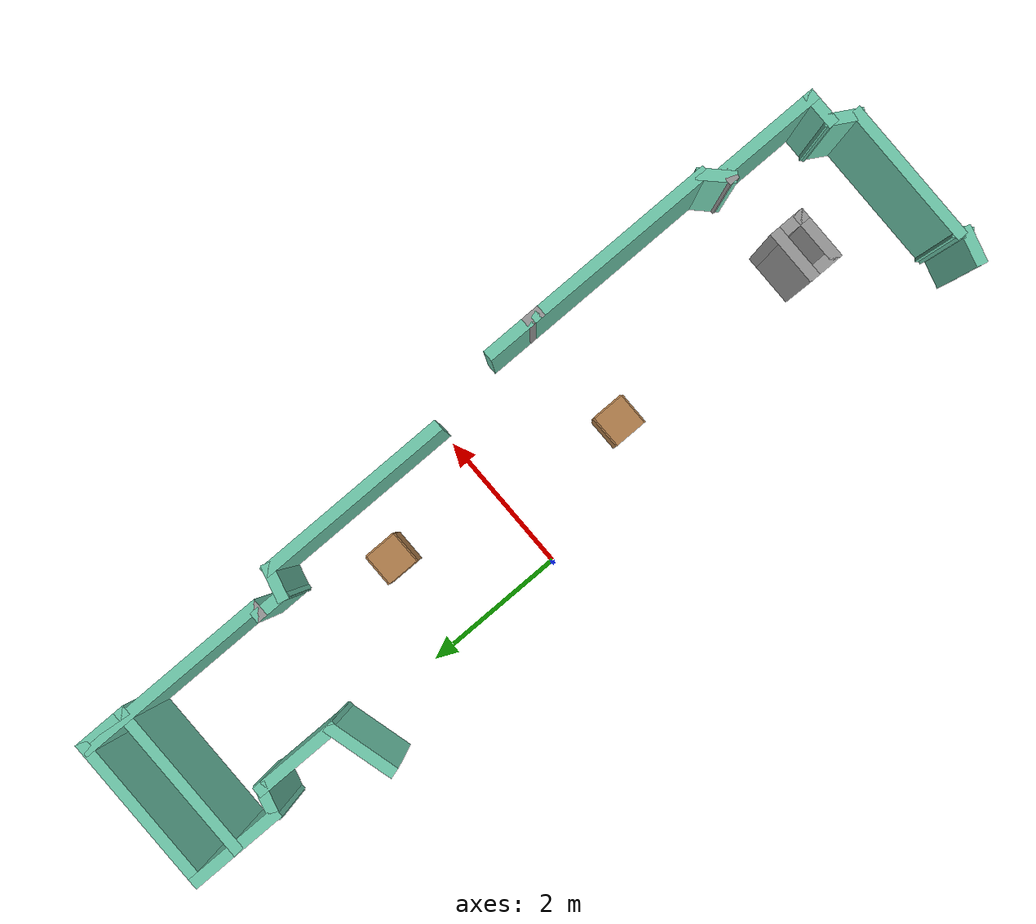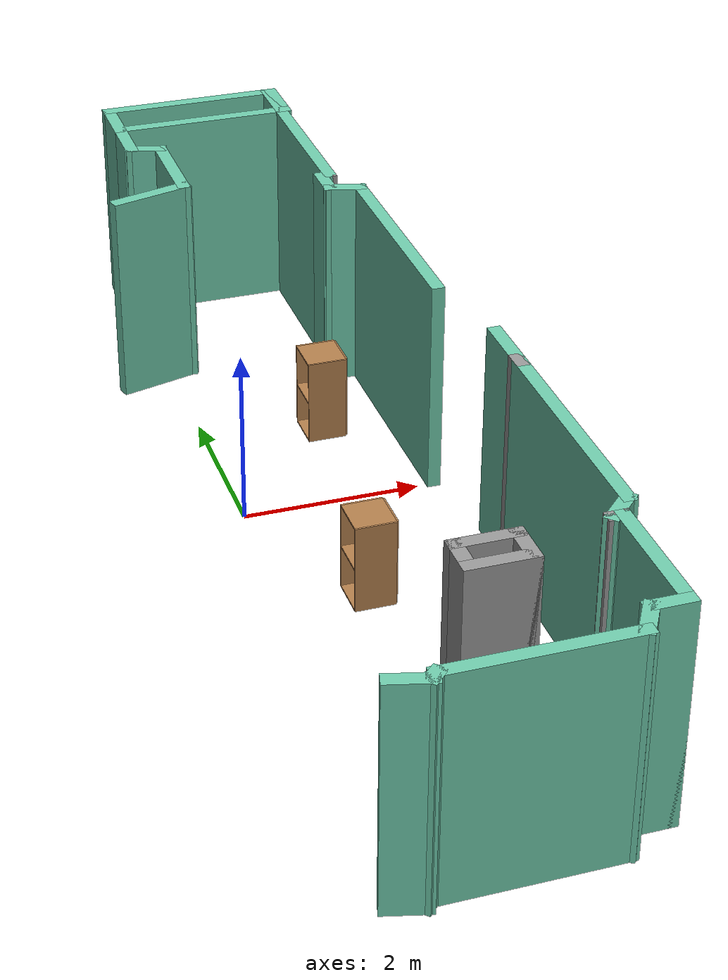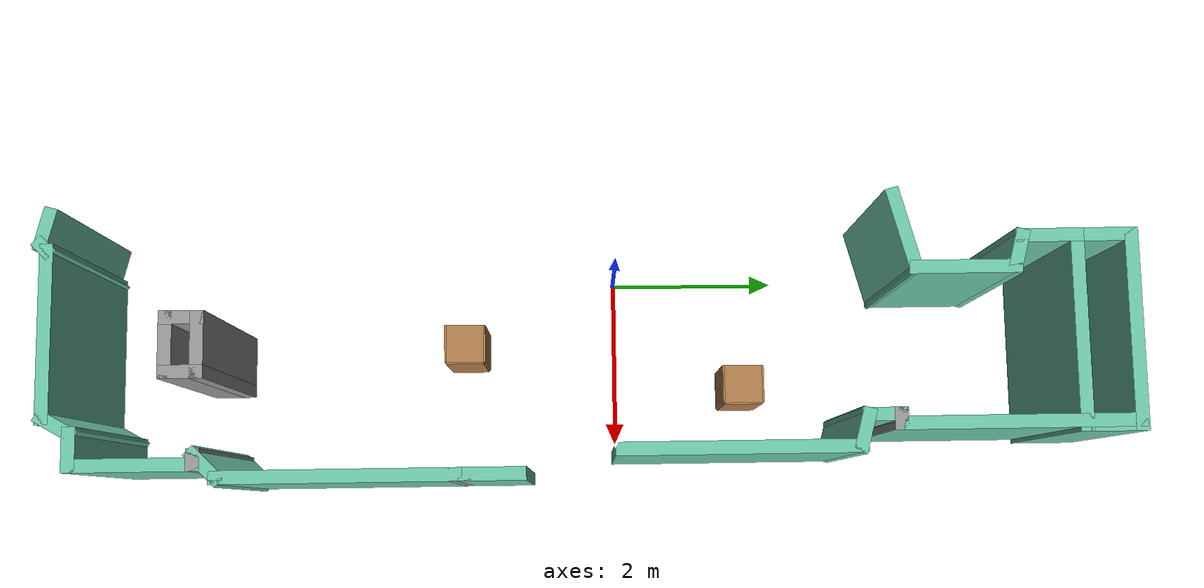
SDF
<sdf version="1.6">
 <world name="default">
  <model name="map_3">
   <pose>0.639107 -0.35531 0 0 -0 0</pose>
   <link name="Wall_0">
    <collision name="Wall_0_Collision">
     <geometry><box><size>2.25 0.15 2.5</size></box></geometry>
     <pose>0 0 1.25 0 -0 0</pose>
    </collision>
    <visual name="Wall_0_Visual">
     <pose>0 0 1.25 0 -0 0</pose>
     <geometry><box><size>2.25 0.15 2.5</size></box></geometry>
     <material>
      <script><uri>file://media/materials/scripts/gazebo.material</uri><name>Gazebo/Grey</name></script>
      <ambient>0.435294 0.796078 0.67451 1</ambient>
     </material>
     <meta><layer>0</layer></meta>
    </visual>
    <pose>0.303175 6.04258 0 0 -0 3.14159</pose>
   </link>
   <link name="Wall_1">
    <collision name="Wall_1_Collision">
     <geometry><box><size>0.75 0.15 2.5</size></box></geometry>
     <pose>0 0 1.25 0 -0 0</pose>
    </collision>
    <visual name="Wall_1_Visual">
     <pose>0 0 1.25 0 -0 0</pose>
     <geometry><box><size>0.75 0.15 2.5</size></box></geometry>
     <material>
      <script><uri>file://media/materials/scripts/gazebo.material</uri><name>Gazebo/Grey</name></script>
      <ambient>0.435294 0.796078 0.67451 1</ambient>
     </material>
     <meta><layer>0</layer></meta>
    </visual>
    <pose>-0.746825 5.74258 0 0 -0 -1.5708</pose>
   </link>
   <link name="Wall_110">
    <collision name="Wall_110_Collision">
     <geometry><box><size>2.75 0.15 2.5</size></box></geometry>
     <pose>0 0 1.25 0 -0 0</pose>
    </collision>
    <visual name="Wall_110_Visual">
     <pose>0 0 1.25 0 -0 0</pose>
     <geometry><box><size>2.75 0.15 2.5</size></box></geometry>
     <material>
      <script><uri>file://media/materials/scripts/gazebo.material</uri><name>Gazebo/Grey</name></script>
      <ambient>0.435294 0.796078 0.67451 1</ambient>
     </material>
     <meta><layer>0</layer></meta>
    </visual>
    <pose>1.54404 1.68376 0 0 -0 1.5708</pose>
   </link>
   <link name="Wall_111">
    <collision name="Wall_111_Collision">
     <geometry><box><size>0.5 0.15 2.5</size></box></geometry>
     <pose>0 0 1.25 0 -0 0</pose>
    </collision>
    <visual name="Wall_111_Visual">
     <pose>0 0 1.25 0 -0 0</pose>
     <geometry><box><size>0.5 0.15 2.5</size></box></geometry>
     <material>
      <script><uri>file://media/materials/scripts/gazebo.material</uri><name>Gazebo/Grey</name></script>
      <ambient>0.435294 0.796078 0.67451 1</ambient>
     </material>
     <meta><layer>0</layer></meta>
    </visual>
    <pose>1.375 3.02905 0 0 -0 2.87979</pose>
   </link>
   <link name="Wall_112">
    <collision name="Wall_112_Collision">
     <geometry><box><size>0.5 0.15 2.5</size></box></geometry>
     <pose>0 0 1.25 0 -0 0</pose>
    </collision>
    <visual name="Wall_112_Visual">
     <pose>0 0 1.25 0 -0 0</pose>
     <geometry><box><size>0.5 0.15 2.5</size></box></geometry>
     <material>
      <script><uri>file://media/materials/scripts/gazebo.material</uri><name>Gazebo/Grey</name></script>
      <ambient>0.435294 0.796078 0.67451 1</ambient>
     </material>
     <meta><layer>0</layer></meta>
    </visual>
    <pose>1.20596 3.24934 0 0 -0 1.5708</pose>
   </link>
   <link name="Wall_113">
    <collision name="Wall_113_Collision">
     <geometry><box><size>0.25 0.15 2.5</size></box></geometry>
     <pose>0 0 1.25 0 -0 0</pose>
    </collision>
    <visual name="Wall_113_Visual">
     <pose>0 0 1.25 0 -0 0</pose>
     <geometry><box><size>0.25 0.15 2.5</size></box></geometry>
     <material>
      <script><uri>file://media/materials/scripts/gazebo.material</uri><name>Gazebo/Grey</name></script>
      <ambient>1 1 1 1</ambient>
     </material>
     <meta><layer>0</layer></meta>
    </visual>
    <pose>1.25596 3.42434 0 0 -0 0</pose>
   </link>
   <link name="Wall_114">
    <collision name="Wall_114_Collision">
     <geometry><box><size>2.75 0.15 2.5</size></box></geometry>
     <pose>0 0 1.25 0 -0 0</pose>
    </collision>
    <visual name="Wall_114_Visual">
     <pose>0 0 1.25 0 -0 0</pose>
     <geometry><box><size>2.75 0.15 2.5</size></box></geometry>
     <material>
      <script><uri>file://media/materials/scripts/gazebo.material</uri><name>Gazebo/Grey</name></script>
      <ambient>0.435294 0.796078 0.67451 1</ambient>
     </material>
     <meta><layer>0</layer></meta>
    </visual>
    <pose>1.30596 4.72434 0 0 -0 1.5708</pose>
   </link>
   <link name="Wall_125">
    <collision name="Wall_125_Collision">
     <geometry><box><size>0.5 0.15 2.5</size></box></geometry>
     <pose>0 0 1.25 0 -0 0</pose>
    </collision>
    <visual name="Wall_125_Visual">
     <pose>0 0 1.25 0 -0 0</pose>
     <geometry><box><size>0.5 0.15 2.5</size></box></geometry>
     <material>
      <script><uri>file://media/materials/scripts/gazebo.material</uri><name>Gazebo/Grey</name></script>
      <ambient>1 1 1 1</ambient>
     </material>
     <meta><layer>0</layer></meta>
    </visual>
    <pose>0.031075 -4.44181 0 0 -0 -1.5708</pose>
   </link>
   <link name="Wall_126">
    <collision name="Wall_126_Collision">
     <geometry><box><size>0.75 0.15 2.5</size></box></geometry>
     <pose>0 0 1.25 0 -0 0</pose>
    </collision>
    <visual name="Wall_126_Visual">
     <pose>0 0 1.25 0 -0 0</pose>
     <geometry><box><size>0.75 0.15 2.5</size></box></geometry>
     <material>
      <script><uri>file://media/materials/scripts/gazebo.material</uri><name>Gazebo/Grey</name></script>
      <ambient>1 1 1 1</ambient>
     </material>
     <meta><layer>0</layer></meta>
    </visual>
    <pose>0.331075 -4.61681 0 0 -0 0</pose>
   </link>
   <link name="Wall_127">
    <collision name="Wall_127_Collision">
     <geometry><box><size>0.5 0.15 2.5</size></box></geometry>
     <pose>0 0 1.25 0 -0 0</pose>
    </collision>
    <visual name="Wall_127_Visual">
     <pose>0 0 1.25 0 -0 0</pose>
     <geometry><box><size>0.5 0.15 2.5</size></box></geometry>
     <material>
      <script><uri>file://media/materials/scripts/gazebo.material</uri><name>Gazebo/Grey</name></script>
      <ambient>1 1 1 1</ambient>
     </material>
     <meta><layer>0</layer></meta>
    </visual>
    <pose>0.631075 -4.44181 0 0 -0 1.5708</pose>
   </link>
   <link name="Wall_128">
    <collision name="Wall_128_Collision">
     <geometry><box><size>0.75 0.15 2.5</size></box></geometry>
     <pose>0 0 1.25 0 -0 0</pose>
    </collision>
    <visual name="Wall_128_Visual">
     <pose>0 0 1.25 0 -0 0</pose>
     <geometry><box><size>0.75 0.15 2.5</size></box></geometry>
     <material>
      <script><uri>file://media/materials/scripts/gazebo.material</uri><name>Gazebo/Grey</name></script>
      <ambient>1 1 1 1</ambient>
     </material>
     <meta><layer>0</layer></meta>
    </visual>
    <pose>0.331075 -4.26681 0 0 -0 3.14159</pose>
   </link>
   <link name="Wall_2">
    <collision name="Wall_2_Collision">
     <geometry><box><size>2.25 0.15 2.5</size></box></geometry>
     <pose>0 0 1.25 0 -0 0</pose>
    </collision>
    <visual name="Wall_2_Visual">
     <pose>0 0 1.25 0 -0 0</pose>
     <geometry><box><size>2.25 0.15 2.5</size></box></geometry>
     <material>
      <script><uri>file://media/materials/scripts/gazebo.material</uri><name>Gazebo/Grey</name></script>
      <ambient>0.435294 0.796078 0.67451 1</ambient>
     </material>
     <meta><layer>0</layer></meta>
    </visual>
    <pose>0.303175 5.44259 0 0 -0 0</pose>
   </link>
   <link name="Wall_3">
    <collision name="Wall_3_Collision">
     <geometry><box><size>0.75 0.15 2.5</size></box></geometry>
     <pose>0 0 1.25 0 -0 0</pose>
    </collision>
    <visual name="Wall_3_Visual">
     <pose>0 0 1.25 0 -0 0</pose>
     <geometry><box><size>0.75 0.15 2.5</size></box></geometry>
     <material>
      <script><uri>file://media/materials/scripts/gazebo.material</uri><name>Gazebo/Grey</name></script>
      <ambient>0.435294 0.796078 0.67451 1</ambient>
     </material>
     <meta><layer>0</layer></meta>
    </visual>
    <pose>1.35318 5.74258 0 0 -0 1.5708</pose>
   </link>
   <link name="Wall_5">
    <collision name="Wall_5_Collision">
     <geometry><box><size>0.75 0.15 2.5</size></box></geometry>
     <pose>0 0 1.25 0 -0 0</pose>
    </collision>
    <visual name="Wall_5_Visual">
     <pose>0 0 1.25 0 -0 0</pose>
     <geometry><box><size>0.75 0.15 2.5</size></box></geometry>
     <material>
      <script><uri>file://media/materials/scripts/gazebo.material</uri><name>Gazebo/Grey</name></script>
      <ambient>0.435294 0.796078 0.67451 1</ambient>
     </material>
     <meta><layer>0</layer></meta>
    </visual>
    <pose>-0.746825 5.14258 0 0 -0 -1.5708</pose>
   </link>
   <link name="Wall_6">
    <collision name="Wall_6_Collision">
     <geometry><box><size>0.5 0.15 2.5</size></box></geometry>
     <pose>0 0 1.25 0 -0 0</pose>
    </collision>
    <visual name="Wall_6_Visual">
     <pose>0 0 1.25 0 -0 0</pose>
     <geometry><box><size>0.5 0.15 2.5</size></box></geometry>
     <material>
      <script><uri>file://media/materials/scripts/gazebo.material</uri><name>Gazebo/Grey</name></script>
      <ambient>0.435294 0.796078 0.67451 1</ambient>
     </material>
     <meta><layer>0</layer></meta>
    </visual>
    <pose>-0.577788 4.79729 0 0 -0 -0.261799</pose>
   </link>
   <link name="Wall_7">
    <collision name="Wall_7_Collision">
     <geometry><box><size>1.25 0.15 2.5</size></box></geometry>
     <pose>0 0 1.25 0 -0 0</pose>
    </collision>
    <visual name="Wall_7_Visual">
     <pose>0 0 1.25 0 -0 0</pose>
     <geometry><box><size>1.25 0.15 2.5</size></box></geometry>
     <material>
      <script><uri>file://media/materials/scripts/gazebo.material</uri><name>Gazebo/Grey</name></script>
      <ambient>0.435294 0.796078 0.67451 1</ambient>
     </material>
     <meta><layer>0</layer></meta>
    </visual>
    <pose>-0.408751 4.202 0 0 -0 -1.5708</pose>
   </link>
   <link name="Wall_75">
    <collision name="Wall_75_Collision">
     <geometry><box><size>0.5 0.15 2.5</size></box></geometry>
     <pose>0 0 1.25 0 -0 0</pose>
    </collision>
    <visual name="Wall_75_Visual">
     <pose>0 0 1.25 0 -0 0</pose>
     <geometry><box><size>0.5 0.15 2.5</size></box></geometry>
     <material>
      <script><uri>file://media/materials/scripts/gazebo.material</uri><name>Gazebo/Grey</name></script>
      <ambient>0.435294 0.796078 0.67451 1</ambient>
     </material>
     <meta><layer>0</layer></meta>
    </visual>
    <pose>-0.972017 -5.96622 0 0 -0 -0.261799</pose>
   </link>
   <link name="Wall_77">
    <collision name="Wall_77_Collision">
     <geometry><box><size>0.25 0.15 2.5</size></box></geometry>
     <pose>0 0 1.25 0 -0 0</pose>
    </collision>
    <visual name="Wall_77_Visual">
     <pose>0 0 1.25 0 -0 0</pose>
     <geometry><box><size>0.25 0.15 2.5</size></box></geometry>
     <material>
      <script><uri>file://media/materials/scripts/gazebo.material</uri><name>Gazebo/Grey</name></script>
      <ambient>0.435294 0.796078 0.67451 1</ambient>
     </material>
     <meta><layer>0</layer></meta>
    </visual>
    <pose>-0.767624 -5.97616 0 0 -0 0.785398</pose>
   </link>
   <link name="Wall_78">
    <collision name="Wall_78_Collision">
     <geometry><box><size>2 0.15 2.5</size></box></geometry>
     <pose>0 0 1.25 0 -0 0</pose>
    </collision>
    <visual name="Wall_78_Visual">
     <pose>0 0 1.25 0 -0 0</pose>
     <geometry><box><size>2 0.15 2.5</size></box></geometry>
     <material>
      <script><uri>file://media/materials/scripts/gazebo.material</uri><name>Gazebo/Grey</name></script>
      <ambient>0.435294 0.796078 0.67451 1</ambient>
     </material>
     <meta><layer>0</layer></meta>
    </visual>
    <pose>0.192731 -5.94081 0 0 -0 0</pose>
   </link>
   <link name="Wall_79">
    <collision name="Wall_79_Collision">
     <geometry><box><size>0.5 0.15 2.5</size></box></geometry>
     <pose>0 0 1.25 0 -0 0</pose>
    </collision>
    <visual name="Wall_79_Visual">
     <pose>0 0 1.25 0 -0 0</pose>
     <geometry><box><size>0.5 0.15 2.5</size></box></geometry>
     <material>
      <script><uri>file://media/materials/scripts/gazebo.material</uri><name>Gazebo/Grey</name></script>
      <ambient>0.435294 0.796078 0.67451 1</ambient>
     </material>
     <meta><layer>0</layer></meta>
    </visual>
    <pose>1.20523 -5.78925 0 0 -0 1.0472</pose>
   </link>
   <link name="Wall_8">
    <collision name="Wall_8_Collision">
     <geometry><box><size>1 0.15 2.5</size></box></geometry>
     <pose>0 0 1.25 0 -0 0</pose>
    </collision>
    <visual name="Wall_8_Visual">
     <pose>0 0 1.25 0 -0 0</pose>
     <geometry><box><size>1 0.15 2.5</size></box></geometry>
     <material>
      <script><uri>file://media/materials/scripts/gazebo.material</uri><name>Gazebo/Grey</name></script>
      <ambient>0.435294 0.796078 0.67451 1</ambient>
     </material>
     <meta><layer>0</layer></meta>
    </visual>
    <pose>-0.81927 3.542 0 0 -0 -2.87979</pose>
   </link>
   <link name="Wall_80">
    <collision name="Wall_80_Collision">
     <geometry><box><size>0.5 0.15 2.5</size></box></geometry>
     <pose>0 0 1.25 0 -0 0</pose>
    </collision>
    <visual name="Wall_80_Visual">
     <pose>0 0 1.25 0 -0 0</pose>
     <geometry><box><size>0.5 0.15 2.5</size></box></geometry>
     <material>
      <script><uri>file://media/materials/scripts/gazebo.material</uri><name>Gazebo/Grey</name></script>
      <ambient>0.435294 0.796078 0.67451 1</ambient>
     </material>
     <meta><layer>0</layer></meta>
    </visual>
    <pose>1.46773 -5.6377 0 0 -0 0</pose>
   </link>
   <link name="Wall_81">
    <collision name="Wall_81_Collision">
     <geometry><box><size>1.5 0.15 2.5</size></box></geometry>
     <pose>0 0 1.25 0 -0 0</pose>
    </collision>
    <visual name="Wall_81_Visual">
     <pose>0 0 1.25 0 -0 0</pose>
     <geometry><box><size>1.5 0.15 2.5</size></box></geometry>
     <material>
      <script><uri>file://media/materials/scripts/gazebo.material</uri><name>Gazebo/Grey</name></script>
      <ambient>0.435294 0.796078 0.67451 1</ambient>
     </material>
     <meta><layer>0</layer></meta>
    </visual>
    <pose>1.64273 -4.9627 0 0 -0 1.5708</pose>
   </link>
   <link name="Wall_82">
    <collision name="Wall_82_Collision">
     <geometry><box><size>0.25 0.15 2.5</size></box></geometry>
     <pose>0 0 1.25 0 -0 0</pose>
    </collision>
    <visual name="Wall_82_Visual">
     <pose>0 0 1.25 0 -0 0</pose>
     <geometry><box><size>0.25 0.15 2.5</size></box></geometry>
     <material>
      <script><uri>file://media/materials/scripts/gazebo.material</uri><name>Gazebo/Grey</name></script>
      <ambient>1 1 1 1</ambient>
     </material>
     <meta><layer>0</layer></meta>
    </visual>
    <pose>1.59273 -4.2877 0 0 -0 3.14159</pose>
   </link>
   <link name="Wall_83">
    <collision name="Wall_83_Collision">
     <geometry><box><size>0.5 0.15 2.5</size></box></geometry>
     <pose>0 0 1.25 0 -0 0</pose>
    </collision>
    <visual name="Wall_83_Visual">
     <pose>0 0 1.25 0 -0 0</pose>
     <geometry><box><size>0.5 0.15 2.5</size></box></geometry>
     <material>
      <script><uri>file://media/materials/scripts/gazebo.material</uri><name>Gazebo/Grey</name></script>
      <ambient>0.435294 0.796078 0.67451 1</ambient>
     </material>
     <meta><layer>0</layer></meta>
    </visual>
    <pose>1.66647 -4.16395 0 0 -0 0.785398</pose>
   </link>
   <link name="Wall_86">
    <collision name="Wall_86_Collision">
     <geometry><box><size>2.75 0.15 2.5</size></box></geometry>
     <pose>0 0 1.25 0 -0 0</pose>
    </collision>
    <visual name="Wall_86_Visual">
     <pose>0 0 1.25 0 -0 0</pose>
     <geometry><box><size>2.75 0.15 2.5</size></box></geometry>
     <material>
      <script><uri>file://media/materials/scripts/gazebo.material</uri><name>Gazebo/Grey</name></script>
      <ambient>0.435294 0.796078 0.67451 1</ambient>
     </material>
     <meta><layer>0</layer></meta>
    </visual>
    <pose>1.79022 -2.74021 0 0 -0 1.5708</pose>
   </link>
   <link name="Wall_87">
    <collision name="Wall_87_Collision">
     <geometry><box><size>0.25 0.15 2.5</size></box></geometry>
     <pose>0 0 1.25 0 -0 0</pose>
    </collision>
    <visual name="Wall_87_Visual">
     <pose>0 0 1.25 0 -0 0</pose>
     <geometry><box><size>0.25 0.15 2.5</size></box></geometry>
     <material>
      <script><uri>file://media/materials/scripts/gazebo.material</uri><name>Gazebo/Grey</name></script>
      <ambient>1 1 1 1</ambient>
     </material>
     <meta><layer>0</layer></meta>
    </visual>
    <pose>1.79022 -1.39021 0 0 -0 1.5708</pose>
   </link>
   <link name="Wall_88">
    <collision name="Wall_88_Collision">
     <geometry><box><size>0.75 0.15 2.5</size></box></geometry>
     <pose>0 0 1.25 0 -0 0</pose>
    </collision>
    <visual name="Wall_88_Visual">
     <pose>0 0 1.25 0 -0 0</pose>
     <geometry><box><size>0.75 0.15 2.5</size></box></geometry>
     <material>
      <script><uri>file://media/materials/scripts/gazebo.material</uri><name>Gazebo/Grey</name></script>
      <ambient>0.435294 0.796078 0.67451 1</ambient>
     </material>
     <meta><layer>0</layer></meta>
    </visual>
    <pose>1.79022 -1.04021 0 0 -0 1.5708</pose>
   </link>
   <static>1</static>
  </model>
  <model name="cabinet_0">
   <static>1</static>
   <link name="cabinet_bottom_plate">
    <inertial>
     <pose>0 0 -1 0 -0 0</pose>
     <inertia><ixx>2.05</ixx><ixy>0</ixy><ixz>0</ixz><iyy>2.05</iyy><iyz>0</iyz><izz>2.05</izz></inertia>
     <mass>25</mass>
    </inertial>
    <collision name="cabinet_bottom_plate_geom">
     <pose>0 0 0.01 0 -0 0</pose>
     <geometry><box><size>0.45 0.45 0.02</size></box></geometry>
    </collision>
    <visual name="cabinet_bottom_plate_geom_visual">
     <pose>0 0 0.01 0 -0 0</pose>
     <geometry><box><size>0.45 0.45 0.02</size></box></geometry>
     <material>
      <script><uri>file://media/materials/scripts/gazebo.material</uri><name>Gazebo/Wood</name></script>
     </material>
    </visual>
    <collision name="cabinet_bottom_plate_geom_cabinet_back_plate">
     <pose>0.235 0 0.51 0 -0 0</pose>
     <geometry><box><size>0.02 0.45 1.02</size></box></geometry>
    </collision>
    <visual name="cabinet_bottom_plate_geom_cabinet_back_plate_visual">
     <pose>0.235 0 0.51 0 -0 0</pose>
     <geometry><box><size>0.02 0.45 1.02</size></box></geometry>
     <material>
      <script><uri>file://media/materials/scripts/gazebo.material</uri><name>Gazebo/Wood</name></script>
     </material>
    </visual>
    <collision name="cabinet_bottom_plate_geom_cabinet_left_plate">
     <pose>0 0.235 0.51 0 -0 0</pose>
     <geometry><box><size>0.45 0.02 1.02</size></box></geometry>
    </collision>
    <visual name="cabinet_bottom_plate_geom_cabinet_left_plate_visual">
     <pose>0 0.235 0.51 0 -0 0</pose>
     <geometry><box><size>0.45 0.02 1.02</size></box></geometry>
     <material>
      <script><uri>file://media/materials/scripts/gazebo.material</uri><name>Gazebo/Wood</name></script>
     </material>
    </visual>
    <collision name="cabinet_bottom_plate_geom_cabinet_middle_plate">
     <pose>0 0 0.51 0 -0 0</pose>
     <geometry><box><size>0.45 0.45 0.02</size></box></geometry>
    </collision>
    <visual name="cabinet_bottom_plate_geom_cabinet_middle_plate_visual">
     <pose>0 0 0.51 0 -0 0</pose>
     <geometry><box><size>0.45 0.45 0.02</size></box></geometry>
     <material>
      <script><uri>file://media/materials/scripts/gazebo.material</uri><name>Gazebo/Wood</name></script>
     </material>
    </visual>
    <collision name="cabinet_bottom_plate_geom_cabinet_right_plate">
     <pose>0 -0.235 0.51 0 -0 0</pose>
     <geometry><box><size>0.45 0.02 1.02</size></box></geometry>
    </collision>
    <visual name="cabinet_bottom_plate_geom_cabinet_right_plate_visual">
     <pose>0 -0.235 0.51 0 -0 0</pose>
     <geometry><box><size>0.45 0.02 1.02</size></box></geometry>
     <material>
      <script><uri>file://media/materials/scripts/gazebo.material</uri><name>Gazebo/Wood</name></script>
     </material>
    </visual>
    <collision name="cabinet_bottom_plate_geom_cabinet_top_plate">
     <pose>0 0 1.01 0 -0 0</pose>
     <geometry><box><size>0.45 0.45 0.02</size></box></geometry>
    </collision>
    <visual name="cabinet_bottom_plate_geom_cabinet_top_plate_visual">
     <pose>0 0 1.01 0 -0 0</pose>
     <geometry><box><size>0.45 0.45 0.02</size></box></geometry>
     <material>
      <script><uri>file://media/materials/scripts/gazebo.material</uri><name>Gazebo/Wood</name></script>
     </material>
    </visual>
   </link>
   <pose>0.821395 -1.81034 0 0 -0 0</pose>
  </model>
  <model name="cabinet_2">
   <static>1</static>
   <link name="cabinet_bottom_plate">
    <inertial>
     <pose>0 0 -1 0 -0 0</pose>
     <inertia><ixx>2.05</ixx><ixy>0</ixy><ixz>0</ixz><iyy>2.05</iyy><iyz>0</iyz><izz>2.05</izz></inertia>
     <mass>25</mass>
    </inertial>
    <collision name="cabinet_bottom_plate_geom">
     <pose>0 0 0.01 0 -0 0</pose>
     <geometry><box><size>0.45 0.45 0.02</size></box></geometry>
    </collision>
    <visual name="cabinet_bottom_plate_geom_visual">
     <pose>0 0 0.01 0 -0 0</pose>
     <geometry><box><size>0.45 0.45 0.02</size></box></geometry>
     <material>
      <script><uri>file://media/materials/scripts/gazebo.material</uri><name>Gazebo/Wood</name></script>
     </material>
    </visual>
    <collision name="cabinet_bottom_plate_geom_cabinet_back_plate">
     <pose>0.235 0 0.51 0 -0 0</pose>
     <geometry><box><size>0.02 0.45 1.02</size></box></geometry>
    </collision>
    <visual name="cabinet_bottom_plate_geom_cabinet_back_plate_visual">
     <pose>0.235 0 0.51 0 -0 0</pose>
     <geometry><box><size>0.02 0.45 1.02</size></box></geometry>
     <material>
      <script><uri>file://media/materials/scripts/gazebo.material</uri><name>Gazebo/Wood</name></script>
     </material>
    </visual>
    <collision name="cabinet_bottom_plate_geom_cabinet_left_plate">
     <pose>0 0.235 0.51 0 -0 0</pose>
     <geometry><box><size>0.45 0.02 1.02</size></box></geometry>
    </collision>
    <visual name="cabinet_bottom_plate_geom_cabinet_left_plate_visual">
     <pose>0 0.235 0.51 0 -0 0</pose>
     <geometry><box><size>0.45 0.02 1.02</size></box></geometry>
     <material>
      <script><uri>file://media/materials/scripts/gazebo.material</uri><name>Gazebo/Wood</name></script>
     </material>
    </visual>
    <collision name="cabinet_bottom_plate_geom_cabinet_middle_plate">
     <pose>0 0 0.51 0 -0 0</pose>
     <geometry><box><size>0.45 0.45 0.02</size></box></geometry>
    </collision>
    <visual name="cabinet_bottom_plate_geom_cabinet_middle_plate_visual">
     <pose>0 0 0.51 0 -0 0</pose>
     <geometry><box><size>0.45 0.45 0.02</size></box></geometry>
     <material>
      <script><uri>file://media/materials/scripts/gazebo.material</uri><name>Gazebo/Wood</name></script>
     </material>
    </visual>
    <collision name="cabinet_bottom_plate_geom_cabinet_right_plate">
     <pose>0 -0.235 0.51 0 -0 0</pose>
     <geometry><box><size>0.45 0.02 1.02</size></box></geometry>
    </collision>
    <visual name="cabinet_bottom_plate_geom_cabinet_right_plate_visual">
     <pose>0 -0.235 0.51 0 -0 0</pose>
     <geometry><box><size>0.45 0.02 1.02</size></box></geometry>
     <material>
      <script><uri>file://media/materials/scripts/gazebo.material</uri><name>Gazebo/Wood</name></script>
     </material>
    </visual>
    <collision name="cabinet_bottom_plate_geom_cabinet_top_plate">
     <pose>0 0 1.01 0 -0 0</pose>
     <geometry><box><size>0.45 0.45 0.02</size></box></geometry>
    </collision>
    <visual name="cabinet_bottom_plate_geom_cabinet_top_plate_visual">
     <pose>0 0 1.01 0 -0 0</pose>
     <geometry><box><size>0.45 0.45 0.02</size></box></geometry>
     <material>
      <script><uri>file://media/materials/scripts/gazebo.material</uri><name>Gazebo/Wood</name></script>
     </material>
    </visual>
   </link>
   <pose>1.35497 1.52818 0 0 -0 0</pose>
  </model>
 </world>
</sdf>
